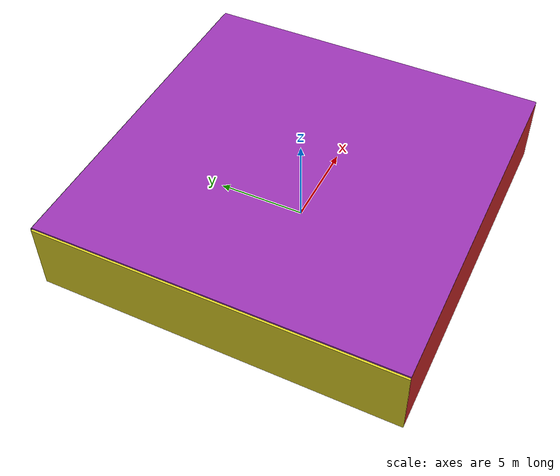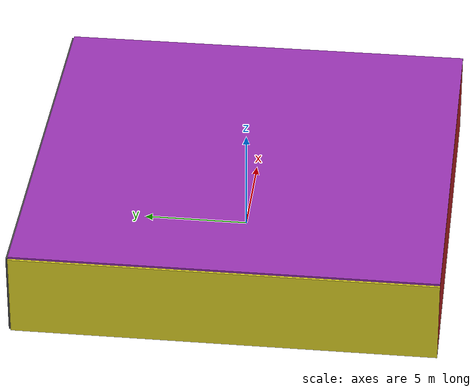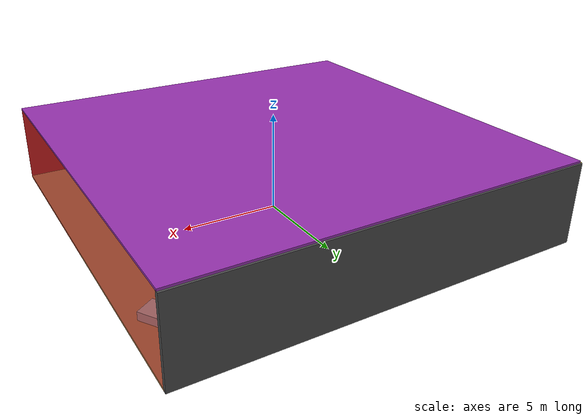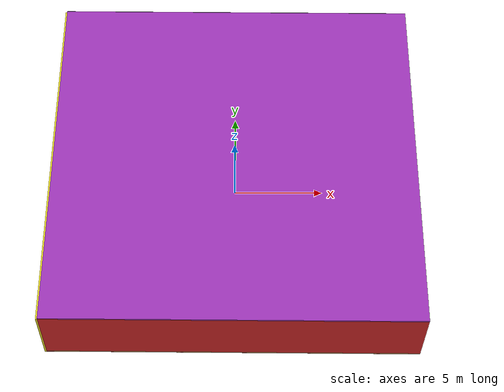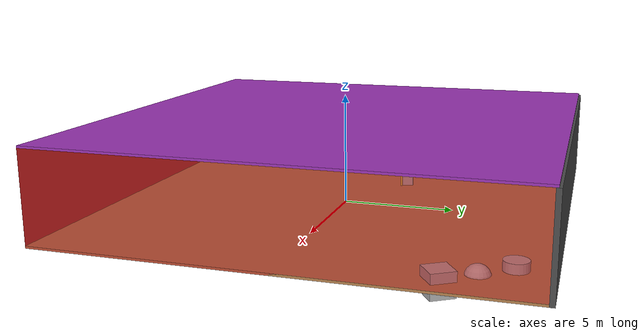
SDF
<sdf version="1.4">
 <world name="default">
  <physics type="ode">
   <max_step_size>0.001</max_step_size>
   <real_time_factor>1</real_time_factor>
   <real_time_update_rate>1000</real_time_update_rate>
   <gravity>0 0 -9.8</gravity>
  </physics>
  <scene><ambient>0.4 0.4 0.4 1</ambient><background>0.7 0.7 0.7 1</background><shadows>1</shadows></scene>
  <model name="Surrounding">
   <static>1</static>
   <link name="Ceiling">
    <collision name="Ceiling_Collision"><geometry><box><size>20 20 0.1</size></box></geometry></collision>
    <visual name="Ceiling_Visual">
     <geometry><box><size>20 20 0.1</size></box></geometry>
     <material>
      <script><uri>file://media/materials/scripts/gazebo.material</uri><name>Gazebo/PurpleGlow</name></script>
     </material>
    </visual>
    <pose>0 0 4.05 0 0 0</pose>
   </link>
   <link name="Wall_South">
    <collision name="Wall_South_Collision">
     <geometry><box><size>20 0 4</size></box></geometry>
     <pose>0 0 2 0 -0 0</pose>
    </collision>
    <visual name="Wall_South_Visual">
     <pose>0 0 2 0 -0 0</pose>
     <geometry><box><size>20 0 4</size></box></geometry>
     <material>
      <script><uri>file://media/materials/scripts/gazebo.material</uri><name>Gazebo/RedGlow</name></script>
     </material>
    </visual>
    <velocity_decay><linear>0</linear><angular>0</angular></velocity_decay>
    <pose>0 -10 0 0 -0 0</pose>
   </link>
   <link name="Wall_East">
    <collision name="Wall_21_Collision">
     <geometry><box><size>20 0 4</size></box></geometry>
     <pose>0 0 2 0 -0 0</pose>
    </collision>
    <visual name="Wall_21_Visual">
     <pose>0 0 2 0 -0 0</pose>
     <geometry><box><size>20 0 4</size></box></geometry>
     <material>
      <script><uri>file://media/materials/scripts/gazebo.material</uri><name>Gazebo/RedTransparent</name></script>
     </material>
    </visual>
    <velocity_decay><linear>0</linear><angular>0</angular></velocity_decay>
    <pose>10 0 0 0 -0 1.5708</pose>
   </link>
   <link name="Wall_North">
    <collision name="Wall_22_Collision">
     <geometry><box><size>20 0.2 4</size></box></geometry>
     <pose>0 0 2 0 -0 0</pose>
    </collision>
    <visual name="Wall_22_Visual">
     <pose>0 0 2 0 -0 0</pose>
     <geometry><box><size>20 0.2 4</size></box></geometry>
     <material>
      <script><uri>file://media/materials/scripts/gazebo.material</uri><name>Gazebo/Road</name></script>
     </material>
    </visual>
    <velocity_decay><linear>0</linear><angular>0</angular></velocity_decay>
    <pose>0 10 0 0 -0 0</pose>
   </link>
   <link name="Wall_West">
    <collision name="Wall_23_Collision">
     <geometry><box><size>20 0.2 4</size></box></geometry>
     <pose>0 0 2 0 -0 0</pose>
    </collision>
    <visual name="Wall_23_Visual">
     <pose>0 0 2 0 -0 0</pose>
     <geometry><box><size>20 0.2 4</size></box></geometry>
     <material>
      <script><uri>file://media/materials/scripts/gazebo.material</uri><name>Gazebo/YellowGlow</name></script>
     </material>
    </visual>
    <velocity_decay><linear>0</linear><angular>0</angular></velocity_decay>
    <pose>-10 0 0 0 0 -1.5708</pose>
   </link>
   <link name="Ground_link">
    <collision name="collision">
     <pose>0 0 .05 0 -0 0</pose>
     <geometry><box><size>20 20 0.1</size></box></geometry>
    </collision>
    <visual name="visual">
     <pose>0 0 .05 0 -0 0</pose>
     <geometry><box><size>20 20 0.1</size></box></geometry>
     <material>
      <script><uri>file://media/materials/scripts/gazebo.material</uri><name>Gazebo/WoodFloor</name></script>
     </material>
    </visual>
   </link>
   <static>1</static>
  </model>
  <spherical_coordinates>
   <surface_model>EARTH_WGS84</surface_model>
   <latitude_deg>0</latitude_deg>
   <longitude_deg>0</longitude_deg>
   <elevation>0</elevation>
   <heading_deg>0</heading_deg>
  </spherical_coordinates>
  <light name="lightball_0" type="diffuse">
   <diffuse>0.8 0.8 0.8 1</diffuse>
   <specular>0.2 0.2 0.2 1</specular>
   <attenuation>
    <range>100</range>
    <constant>0.7</constant>
    <linear>0.01</linear>
    <quadratic>0.001</quadratic>
   </attenuation>
   <direction>-0.5 0.1 -0.9</direction>
   <pose>-6.21541053529 7.34384256325 1.90636864327 0 0 0</pose>
  </light>
  <light name="lightball_1" type="diffuse">
   <diffuse>0.8 0.8 0.8 1</diffuse>
   <specular>0.2 0.2 0.2 1</specular>
   <attenuation>
    <range>100</range>
    <constant>0.7</constant>
    <linear>0.01</linear>
    <quadratic>0.001</quadratic>
   </attenuation>
   <direction>-0.5 0.1 -0.9</direction>
   <pose>-4.89878616158 -1.17003564998 1.74517464074 0 0 0</pose>
  </light>
  <light name="lightball_2" type="diffuse">
   <diffuse>0.8 0.8 0.8 1</diffuse>
   <specular>0.2 0.2 0.2 1</specular>
   <attenuation>
    <range>100</range>
    <constant>0.7</constant>
    <linear>0.01</linear>
    <quadratic>0.001</quadratic>
   </attenuation>
   <direction>-0.5 0.1 -0.9</direction>
   <pose>5.03921844234 -0.715970831281 3.60067835082 0 0 0</pose>
  </light>
  <light name="lightball_3" type="diffuse">
   <diffuse>0.8 0.8 0.8 1</diffuse>
   <specular>0.2 0.2 0.2 1</specular>
   <attenuation>
    <range>100</range>
    <constant>0.7</constant>
    <linear>0.01</linear>
    <quadratic>0.001</quadratic>
   </attenuation>
   <direction>-0.5 0.1 -0.9</direction>
   <pose>3.50417029146 -1.18113358071 1.18450028032 0 0 0</pose>
  </light>
  <light name="lightball_4" type="diffuse">
   <diffuse>0.8 0.8 0.8 1</diffuse>
   <specular>0.2 0.2 0.2 1</specular>
   <attenuation>
    <range>100</range>
    <constant>0.7</constant>
    <linear>0.01</linear>
    <quadratic>0.001</quadratic>
   </attenuation>
   <direction>-0.5 0.1 -0.9</direction>
   <pose>1.59156375064 -1.22022526883 3.26540303787 0 0 0</pose>
  </light>
  <light name="lightball_5" type="diffuse">
   <diffuse>0.8 0.8 0.8 1</diffuse>
   <specular>0.2 0.2 0.2 1</specular>
   <attenuation>
    <range>100</range>
    <constant>0.7</constant>
    <linear>0.01</linear>
    <quadratic>0.001</quadratic>
   </attenuation>
   <direction>-0.5 0.1 -0.9</direction>
   <pose>-9.46544127916 -3.37557022157 3.20493300399 0 0 0</pose>
  </light>
  <light name="lightball_6" type="diffuse">
   <diffuse>0.8 0.8 0.8 1</diffuse>
   <specular>0.2 0.2 0.2 1</specular>
   <attenuation>
    <range>100</range>
    <constant>0.7</constant>
    <linear>0.01</linear>
    <quadratic>0.001</quadratic>
   </attenuation>
   <direction>-0.5 0.1 -0.9</direction>
   <pose>-3.70206963096 2.31074494809 1.1618916157 0 0 0</pose>
  </light>
  <light name="lightball_7" type="diffuse">
   <diffuse>0.8 0.8 0.8 1</diffuse>
   <specular>0.2 0.2 0.2 1</specular>
   <attenuation>
    <range>100</range>
    <constant>0.7</constant>
    <linear>0.01</linear>
    <quadratic>0.001</quadratic>
   </attenuation>
   <direction>-0.5 0.1 -0.9</direction>
   <pose>7.74104479893 9.87685230097 2.12124362445 0 0 0</pose>
  </light>
  <include><uri>model://table</uri><pose>-7.79005143891 -5.04337910893 0 0 0 1.36631545051</pose></include>
  <include><uri>model://table</uri><pose>-7.98601426769 -1.54133412513 0 0 0 2.2099687208</pose></include>
  <include>
   <uri>model://robocup_3Dsim_goal</uri>
   <pose>-4.27116143234 1.58438757058 0 0 0 1.88600611766</pose>
  </include>
  <include>
   <uri>model://textured_shapes</uri>
   <pose>7.96241282096 7.30828602283 0 0 0 0.571539406006</pose>
  </include>
 </world>
</sdf>

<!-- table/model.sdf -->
<sdf version="1.5">
  <model name="table">
    <static>true</static>
    <link name="link">
      <collision name="surface">
        <pose>0 0 1.0 0 0 0</pose>
        <geometry>
          <box>
            <size>1.5 0.8 0.03</size>
          </box>
        </geometry>
        <surface>
          <friction>
            <ode>
              <mu>0.6</mu>
              <mu2>0.6</mu2>
            </ode>
          </friction>
        </surface>
      </collision>
      <visual name="visual1">
        <pose>0 0 1.0 0 0 0</pose>
        <geometry>
          <box>
            <size>1.5 0.8 0.03</size>
          </box>
        </geometry>
        <material>
          <script>
            <uri>model://media/materials/scripts/gazebo.material</uri>
            <name>Gazebo/Wood</name>
          </script>
        </material>
      </visual>
      <collision name="front_left_leg">
        <pose>0.68 0.38 0.5 0 0 0</pose>
        <geometry>
          <cylinder>
            <radius>0.02</radius>
            <length>1.0</length>
          </cylinder>
        </geometry>
      </collision>
      <visual name="front_left_leg">
        <pose>0.68 0.38 0.5 0 0 0</pose>
        <geometry>
          <cylinder>
            <radius>0.02</radius>
            <length>1.0</length>
          </cylinder>
        </geometry>
        <material>
          <script>
            <uri>model://media/materials/scripts/gazebo.material</uri>
            <name>Gazebo/Grey</name>
          </script>
        </material>
      </visual>
      <collision name="front_right_leg">
        <pose>0.68 -0.38 0.5 0 0 0</pose>
        <geometry>
          <cylinder>
            <radius>0.02</radius>
            <length>1.0</length>
          </cylinder>
        </geometry>
      </collision>
      <visual name="front_right_leg">
        <pose>0.68 -0.38 0.5 0 0 0</pose>
        <geometry>
          <cylinder>
            <radius>0.02</radius>
            <length>1.0</length>
          </cylinder>
        </geometry>
        <material>
          <script>
            <uri>model://media/materials/scripts/gazebo.material</uri>
            <name>Gazebo/Grey</name>
          </script>
        </material>
      </visual>
      <collision name="back_right_leg">
        <pose>-0.68 -0.38 0.5 0 0 0</pose>
        <geometry>
          <cylinder>
            <radius>0.02</radius>
            <length>1.0</length>
          </cylinder>
        </geometry>
      </collision>
      <visual name="back_right_leg">
        <pose>-0.68 -0.38 0.5 0 0 0</pose>
        <geometry>
          <cylinder>
            <radius>0.02</radius>
            <length>1.0</length>
          </cylinder>
        </geometry>
        <material>
          <script>
            <uri>model://media/materials/scripts/gazebo.material</uri>
            <name>Gazebo/Grey</name>
          </script>
        </material>
      </visual>
      <collision name="back_left_leg">
        <pose>-0.68 0.38 0.5 0 0 0</pose>
        <geometry>
          <cylinder>
            <radius>0.02</radius>
            <length>1.0</length>
          </cylinder>
        </geometry>
      </collision>
      <visual name="back_left_leg">
        <pose>-0.68 0.38 0.5 0 0 0</pose>
        <geometry>
          <cylinder>
            <radius>0.02</radius>
            <length>1.0</length>
          </cylinder>
        </geometry>
        <material>
          <script>
            <uri>model://media/materials/scripts/gazebo.material</uri>
            <name>Gazebo/Grey</name>
          </script>
        </material>
      </visual>
    </link>
  </model>
</sdf>

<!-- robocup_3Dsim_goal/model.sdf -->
<sdf version="1.5">
  <model name="robocup_3d_goal">
    <static>true</static>
    <link name="left_post">
      <pose>0 1.05 0.45 0 0 0</pose>
      <collision name="collision">
        <geometry>
          <cylinder>
            <radius>0.05</radius>
            <length>0.9</length>
          </cylinder>
        </geometry>
      </collision>
      <visual name="visual">
        <geometry>
          <cylinder>
            <radius>0.05</radius>
            <length>0.9</length>
          </cylinder>
        </geometry>
        <material>
          <script>
            <uri>file://media/materials/scripts/gazebo.material</uri>
            <name>Gazebo/ZincYellow</name>
          </script>
        </material>
      </visual>
    </link>
    <link name="left_support_horiz_lower">
      <pose>0.30 1.05 0.01 0 0 0</pose>
      <collision name="collision">
        <geometry>
          <box>
            <size>0.50 0.02 0.02</size>
          </box>
        </geometry>
      </collision>
      <visual name="visual">
        <geometry>
          <box>
            <size>0.50 0.02 0.02</size>
          </box>
        </geometry>
        <material>
          <script>
            <uri>file://media/materials/scripts/gazebo.material</uri>
            <name>Gazebo/White</name>
          </script>
        </material>
      </visual>
    </link>
    <link name="left_support_horiz_upper">
      <pose>0.30 1.05 0.79 0 0 0</pose>
      <collision name="collision">
        <geometry>
          <box>
            <size>0.50 0.02 0.02</size>
          </box>
        </geometry>
      </collision>
      <visual name="visual">
        <geometry>
          <box>
            <size>0.50 0.02 0.02</size>
          </box>
        </geometry>
        <material>
          <script>
            <uri>file://media/materials/scripts/gazebo.material</uri>
            <name>Gazebo/White</name>
          </script>
        </material>
      </visual>
    </link>
    <link name="left_support_vertical">
      <pose>0.56 1.05 0.4 0 1.5708 0</pose>
      <collision name="collision">
        <geometry>
          <box>
            <size>0.80 0.02 0.02</size>
          </box>
        </geometry>
      </collision>
      <visual name="visual">
        <geometry>
          <box>
            <size>0.80 0.02 0.02</size>
          </box>
        </geometry>
        <material>
          <script>
            <uri>file://media/materials/scripts/gazebo.material</uri>
            <name>Gazebo/White</name>
          </script>
        </material>
      </visual>
    </link>
    <link name="right_support_horiz_lower">
      <pose>0.30 -1.05 0.01 0 0 0</pose>
      <collision name="collision">
        <geometry>
          <box>
            <size>0.50 0.02 0.02</size>
          </box>
        </geometry>
      </collision>
      <visual name="visual">
        <geometry>
          <box>
            <size>0.50 0.02 0.02</size>
          </box>
        </geometry>
        <material>
          <script>
            <uri>file://media/materials/scripts/gazebo.material</uri>
            <name>Gazebo/White</name>
          </script>
        </material>
      </visual>
    </link>
    <link name="right_support_horiz_upper">
      <pose>0.30 -1.05 0.79 0 0 0</pose>
      <collision name="collision">
        <geometry>
          <box>
            <size>0.50 0.02 0.02</size>
          </box>
        </geometry>
      </collision>
      <visual name="visual">
        <geometry>
          <box>
            <size>0.50 0.02 0.02</size>
          </box>
        </geometry>
        <material>
          <script>
            <uri>file://media/materials/scripts/gazebo.material</uri>
            <name>Gazebo/White</name>
          </script>
        </material>
      </visual>
    </link>
    <link name="right_support_vertical">
      <pose>0.56 -1.05 0.4 0 1.5708 0</pose>
      <collision name="collision">
        <geometry>
          <box>
            <size>0.80 0.02 0.02</size>
          </box>
        </geometry>
      </collision>
      <visual name="visual">
        <geometry>
          <box>
            <size>0.80 0.02 0.02</size>
          </box>
        </geometry>
        <material>
          <script>
            <uri>file://media/materials/scripts/gazebo.material</uri>
            <name>Gazebo/White</name>
          </script>
        </material>
      </visual>
    </link>
    <link name="center_support_horiz_lower">
      <pose>0.56 0 0.01 0 1.5708 0</pose>
      <collision name="collision">
        <geometry>
          <box>
            <size>0.02 2.08 0.02</size>
          </box>
        </geometry>
      </collision>
      <visual name="visual">
        <geometry>
          <box>
            <size>0.02 2.08 0.02</size>
          </box>
        </geometry>
        <material>
          <script>
            <uri>file://media/materials/scripts/gazebo.material</uri>
            <name>Gazebo/White</name>
          </script>
        </material>
      </visual>
    </link>
    <link name="center_support_horiz_upper">
      <pose>0.56 0 0.79 0 1.5708 0</pose>
      <collision name="collision">
        <geometry>
          <box>
            <size>0.02 2.08 0.02</size>
          </box>
        </geometry>
      </collision>
      <visual name="visual">
        <geometry>
          <box>
            <size>0.02 2.08 0.02</size>
          </box>
        </geometry>
        <material>
          <script>
            <uri>file://media/materials/scripts/gazebo.material</uri>
            <name>Gazebo/White</name>
          </script>
        </material>
      </visual>
    </link>
    <link name="right_post">
      <pose>0 -1.05 0.45 0 0 0</pose>
      <collision name="collision">
        <geometry>
          <cylinder>
            <radius>0.05</radius>
            <length>0.9</length>
          </cylinder>
        </geometry>
      </collision>
      <visual name="visual">
        <geometry>
          <cylinder>
            <radius>0.05</radius>
            <length>0.9</length>
          </cylinder>
        </geometry>
        <material>
          <script>
            <uri>file://media/materials/scripts/gazebo.material</uri>
            <name>Gazebo/ZincYellow</name>
          </script>
        </material>
      </visual>
    </link>
    <link name="crossbar">
      <pose>0 0 0.85 1.57 1.57 0</pose>
      <collision name="collision">
        <geometry>
          <cylinder>
            <radius>0.05</radius>
            <length>2.0</length>
          </cylinder>
        </geometry>
      </collision>
      <visual name="visual">
        <geometry>
          <cylinder>
            <radius>0.05</radius>
            <length>2.0</length>
          </cylinder>
        </geometry>
        <material>
          <script>
            <uri>file://media/materials/scripts/gazebo.material</uri>
            <name>Gazebo/ZincYellow</name>
          </script>
        </material>
      </visual>
    </link>
    <link name="center_net">
      <pose>0.56 0 0.40 0 0 0</pose>
      <collision name="collision">
        <geometry>
          <box>
            <size>0.01 2.1 0.80</size>
          </box>
        </geometry>
      </collision>
      <visual name="visual">
        <geometry>
          <box>
            <size>0.01 2.1 0.80</size>
          </box>
        </geometry>
        <material>
          <script>
            <uri>model://../model_source/models/robocup09_spl_field/materials/scripts/</uri>
            <uri>model://../model_source/models/robocup09_spl_field/materials/textures/</uri>
            <name>RoboCup/Net</name>
          </script>
        </material>
      </visual>
    </link>
    <link name="left_net">
      <pose>0.30 1.05 0.40 0 0 0</pose>
      <collision name="collision">
        <geometry>
          <box>
            <size>0.50 0.01 0.76</size>
          </box>
        </geometry>
      </collision>
      <visual name="visual">
        <geometry>
          <box>
            <size>0.50 0.01 0.76</size>
          </box>
        </geometry>
        <material>
          <script>
            <uri>model://../model_source/models/robocup09_spl_field/materials/scripts/</uri>
            <uri>model://../model_source/models/robocup09_spl_field/materials/textures/</uri>
            <name>RoboCup/Net</name>
          </script>
        </material>
      </visual>
    </link>
    <link name="right_net">
      <pose>0.30 -1.05 0.40 0 0 0</pose>
      <collision name="collision">
        <geometry>
          <box>
            <size>0.50 0.01 0.76</size>
          </box>
        </geometry>
      </collision>
      <visual name="visual">
        <geometry>
          <box>
            <size>0.50 0.01 0.76</size>
          </box>
        </geometry>
        <material>
          <script>
            <uri>model://../model_source/models/robocup09_spl_field/materials/scripts/</uri>
            <uri>model://../model_source/models/robocup09_spl_field/materials/textures/</uri>
            <name>RoboCup/Net</name>
          </script>
        </material>
      </visual>
    </link>
  </model>
</sdf>

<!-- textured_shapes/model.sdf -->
<sdf version="1.6">
  <model name="textured_shapes">
    <pose>0 0 0.5 0 0 0</pose>
    <link name="box">
      <pose>0 -1.5 0 0 0 0</pose>
      <collision name="collision">
        <geometry>
          <box>
            <size>1 1 1</size>
          </box>
        </geometry>
      </collision>
      <visual name="visual">
        <geometry>
          <box>
            <size>1 1 1</size>
          </box>
        </geometry>
        <material>
          <script>
            <uri>model://../model_source/models/textured_shapes/materials/scripts</uri>
            <uri>model://../model_source/models/textured_shapes/materials/textures</uri>
            <name>TexturedShape/Squares</name>
          </script>
        </material>
      </visual>
    </link>
    <link name="sphere">
      <collision name="collision">
        <geometry>
          <sphere>
            <radius>0.5</radius>
          </sphere>
        </geometry>
      </collision>
      <visual name="visual">
        <geometry>
          <sphere>
            <radius>0.5</radius>
          </sphere>
        </geometry>
        <material>
          <script>
            <uri>model://../model_source/models/textured_shapes/materials/scripts</uri>
            <uri>model://../model_source/models/textured_shapes/materials/textures</uri>
            <name>TexturedShape/Squares</name>
          </script>
        </material>
      </visual>
    </link>
    <link name="cylinder">
      <pose>0 1.5 0 0 0 0</pose>
      <collision name="collision">
        <geometry>
          <cylinder>
            <radius>0.5</radius>
            <length>1</length>
          </cylinder>
        </geometry>
      </collision>
      <visual name="visual">
        <geometry>
          <cylinder>
            <radius>0.5</radius>
            <length>1</length>
          </cylinder>
        </geometry>
        <material>
          <script>
            <uri>model://../model_source/models/textured_shapes/materials/scripts</uri>
            <uri>model://../model_source/models/textured_shapes/materials/textures</uri>
            <name>TexturedShape/Squares</name>
          </script>
        </material>
      </visual>
    </link>
  </model>
</sdf>
